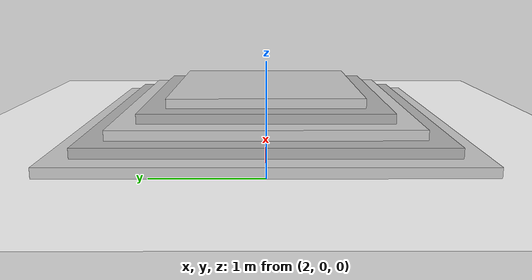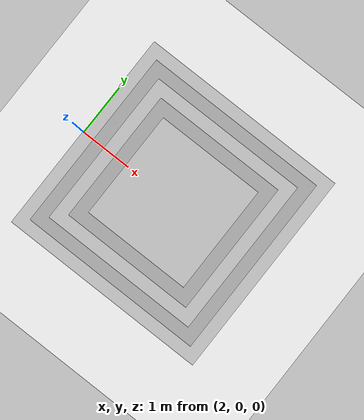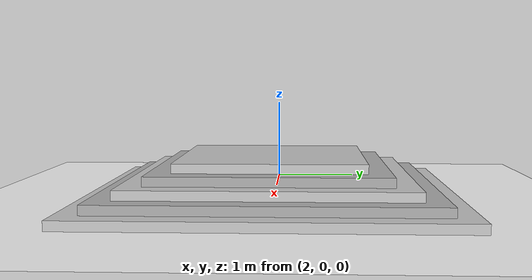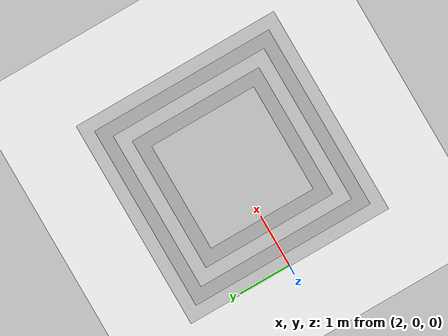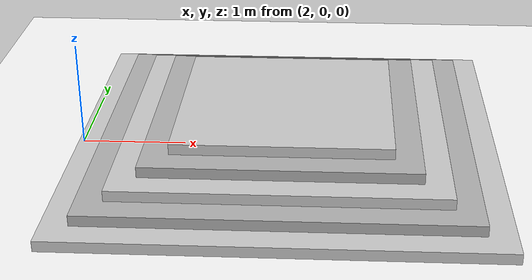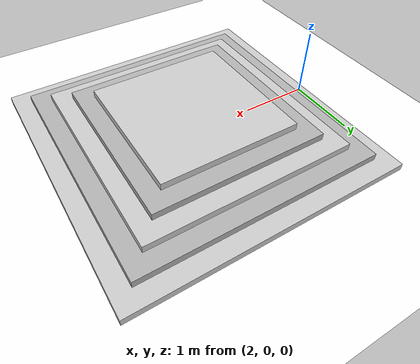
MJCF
<mujoco>

  <asset>
    <texture name="texplane" type="2d" builtin="checker" rgb1="1 1 1" rgb2="1 1 1" width="512" height="512" mark="cross" markrgb="0 0 0"/>
    <material name="matplane" reflectance="0.0" texture="texplane" texrepeat="1 1" texuniform="true"/>
  </asset>

  <worldbody>
    <geom group="1" name="floor" pos="0 0 0" size="0 0 0.25" type="plane" material="matplane" condim="3"/>
    <geom group="1" type="box" pos=" 4.0 0 0.05" size="2.00 2.00 0.05" rgba="0.8 0.8 0.8 1"/>
    <geom group="1" type="box" pos=" 4.0 0 0.15" size="1.75 1.75 0.05" rgba="0.7 0.7 0.7 1"/>
    <geom group="1" type="box" pos=" 4.0 0 0.25" size="1.50 1.50 0.05" rgba="0.8 0.8 0.8 1"/>
    <geom group="1" type="box" pos=" 4.0 0 0.35" size="1.25 1.25 0.05" rgba="0.7 0.7 0.7 1"/>
    <geom group="1" type="box" pos=" 4.0 0 0.45" size="1.00 1.00 0.05" rgba="0.8 0.8 0.8 1"/>
  </worldbody>

</mujoco>
